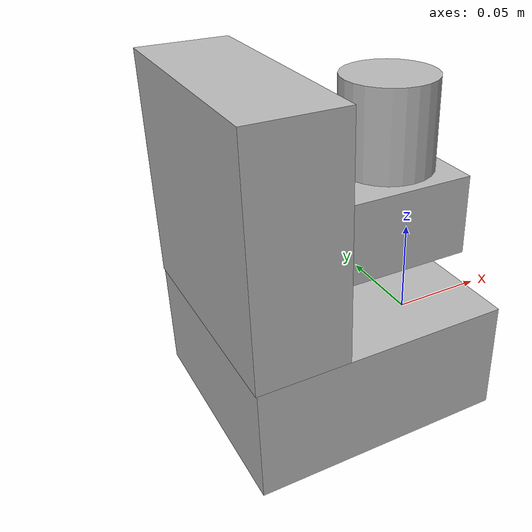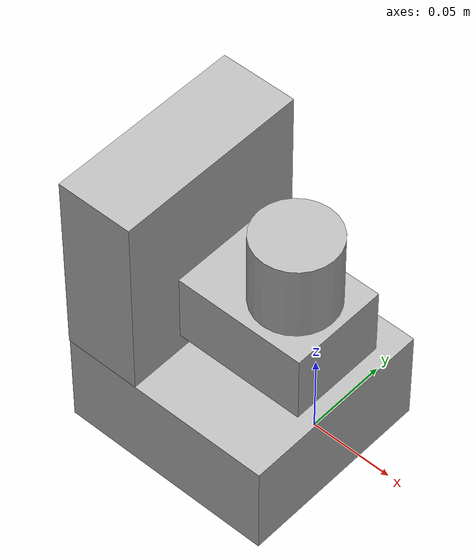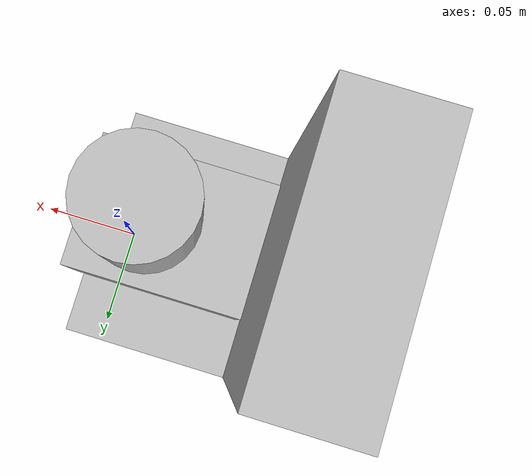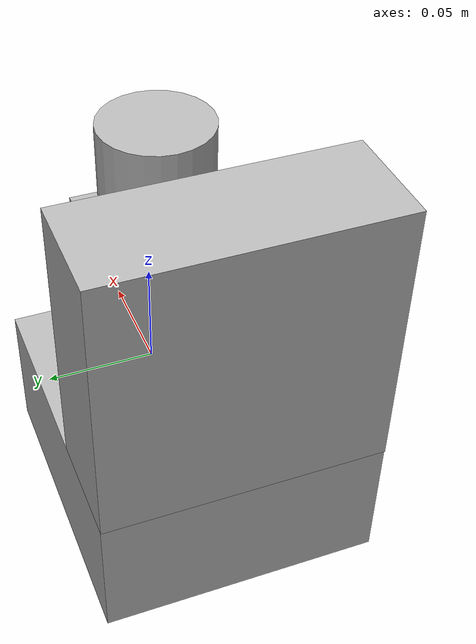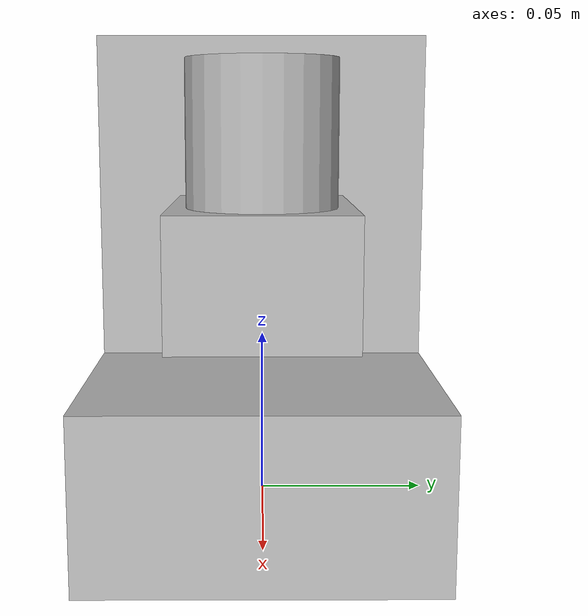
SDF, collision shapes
<?xml version='1.0'?>
<sdf version='1.4'>
  <model name='atlas'>
    <link name='head'>
      <pose>0 0 0 0 -0 0</pose>
      <inertial>
        <pose>-0.0754942 3.38765e-05 0.0277411 0 -0 0</pose>
        <mass>1.41991</mass>
        <inertia>
          <ixx>0.00361284</ixx>
          <ixy>-1.51324e-06</ixy>
          <ixz>-0.000892818</ixz>
          <iyy>0.00208745</iyy>
          <iyz>-6.83342e-07</iyz>
          <izz>0.00179047</izz>
        </inertia>
      </inertial>
      <collision name='head_collision'>
        <pose>-0.0503 0 -0.00195 0 -0 0</pose>
        <geometry>
          <box>
            <size>0.1311 0.12 0.0591</size>
          </box>
        </geometry>
        <surface>
          <contact>
            <ode/>
          </contact>
          <friction>
            <ode>
              <mu>0.9</mu>
              <mu2>0.9</mu2>
            </ode>
          </friction>
        </surface>
      </collision>
      <collision name='head_collision_head_other'>
        <pose>-0.093 0 0.0868 0 -0 0</pose>
        <geometry>
          <box>
            <size>0.0468 0.12 0.1184</size>
          </box>
        </geometry>
        <surface>
          <contact>
            <ode/>
          </contact>
          <friction>
            <ode>
              <mu>0.9</mu>
              <mu2>0.9</mu2>
            </ode>
          </friction>
        </surface>
      </collision>
      <visual name='head_visual'>
        <pose>0 0 0 0 -0 0</pose>
        <geometry>
          <mesh>
            <scale>1 1 1</scale>
            <uri>model://multisense_sl/meshes/head.dae</uri>
          </mesh>
        </geometry>
      </visual>
      <visual name='head_visual_head_imu_link'>
        <pose>-0.0475 0.035 0 0 -0 0</pose>
        <geometry>
          <box>
            <size>0.01 0.01 0.01</size>
          </box>
        </geometry>
      </visual>
      <velocity_decay>
        <linear>0</linear>
        <angular>0</angular>
      </velocity_decay>
      <velocity_decay>
        <linear>0</linear>
        <angular>0</angular>
      </velocity_decay>
      <sensor name='head_imu_sensor' type='imu'>
        <always_on>1</always_on>
        <update_rate>1000</update_rate>
        <imu>
          <noise>
            <type>gaussian</type>
            <rate>
              <mean>0</mean>
              <stddev>0.0002</stddev>
              <bias_mean>7.5e-06</bias_mean>
              <bias_stddev>8e-07</bias_stddev>
            </rate>
            <accel>
              <mean>0</mean>
              <stddev>0.017</stddev>
              <bias_mean>0.1</bias_mean>
              <bias_stddev>0.001</bias_stddev>
            </accel>
          </noise>
        </imu>
        <pose>-0.0475 0.035 0 0 -0 0</pose>
      </sensor>
      <gravity>1</gravity>
      <velocity_decay>
        <linear>0</linear>
        <angular>0</angular>
      </velocity_decay>
      <self_collide>0</self_collide>
      <sensor name='stereo_camera' type='multicamera'>
        <update_rate>30</update_rate>
        <camera name='left'>
          <horizontal_fov>1.39626</horizontal_fov>
          <image>
            <width>800</width>
            <height>800</height>
            <format>R8G8B8</format>
          </image>
          <clip>
            <near>0.02</near>
            <far>300</far>
          </clip>
          <noise>
            <type>gaussian</type>
            <mean>0</mean>
            <stddev>0.007</stddev>
          </noise>
        </camera>
        <camera name='right'>
          <pose>0 -0.07 0 0 -0 0</pose>
          <horizontal_fov>1.39626</horizontal_fov>
          <image>
            <width>800</width>
            <height>800</height>
            <format>R8G8B8</format>
          </image>
          <clip>
            <near>0.02</near>
            <far>300</far>
          </clip>
          <noise>
            <type>gaussian</type>
            <mean>0</mean>
            <stddev>0.007</stddev>
          </noise>
        </camera>
        <pose>0 0.035 -0.002 0 -0 0</pose>
      </sensor>
    </link>
    <link name='hokuyo_link'>
      <pose>-0.0446 0 0.088 0 -0 0</pose>
      <inertial>
        <pose>0.0124384 0.0004084 -0.0041783 0 -0 0</pose>
        <mass>0.057664</mass>
        <inertia>
          <ixx>0.000401606</ixx>
          <ixy>4.9927e-08</ixy>
          <ixz>1.0997e-05</ixz>
          <iyy>0.00208115</iyy>
          <iyz>-9.8165e-09</iyz>
          <izz>0.00178402</izz>
        </inertia>
      </inertial>
      <collision name='hokuyo_link_collision'>
        <pose>0.01885 0 -0.02119 0 -0 0</pose>
        <geometry>
          <box>
            <size>0.08 0.06 0.04238</size>
          </box>
        </geometry>
        <surface>
          <contact>
            <ode/>
          </contact>
          <friction>
            <ode>
              <mu>0.9</mu>
              <mu2>0.9</mu2>
            </ode>
          </friction>
        </surface>
      </collision>
      <collision name='hokuyo_link_collision_hokuyo_link_other'>
        <pose>0.03 0 0.0235 0 -0 0</pose>
        <geometry>
          <cylinder>
            <length>0.047</length>
            <radius>0.024425</radius>
          </cylinder>
        </geometry>
        <surface>
          <contact>
            <ode/>
          </contact>
          <friction>
            <ode>
              <mu>0.9</mu>
              <mu2>0.9</mu2>
            </ode>
          </friction>
        </surface>
      </collision>
      <visual name='hokuyo_link_visual'>
        <pose>0.045 -0.0261018 -0.0834237 -0.314 0 0</pose>
        <geometry>
          <mesh>
            <scale>1 1 1</scale>
            <uri>model://multisense_sl/meshes/head_camera.dae</uri>
          </mesh>
        </geometry>
      </visual>
      <velocity_decay>
        <linear>0</linear>
        <angular>0</angular>
      </velocity_decay>
      <gravity>1</gravity>
      <velocity_decay>
        <linear>0</linear>
        <angular>0</angular>
      </velocity_decay>
      <self_collide>0</self_collide>
      <sensor name='head_hokuyo_sensor' type='gpu_ray'>
        <visualize>0</visualize>
        <update_rate>40</update_rate>
        <ray>
          <scan>
            <horizontal>
              <samples>720</samples>
              <resolution>1</resolution>
              <min_angle>-1.5708</min_angle>
              <max_angle>1.5708</max_angle>
            </horizontal>
          </scan>
          <range>
            <min>0.1</min>
            <max>30</max>
            <resolution>0.01</resolution>
          </range>
          <noise>
            <type>gaussian</type>
            <mean>0</mean>
            <stddev>0.01</stddev>
          </noise>
        </ray>
        <pose>0.03 0 0.015 0 -0 0</pose>
      </sensor>
    </link>
    <joint name='hokuyo_joint' type='revolute'>
      <child>hokuyo_link</child>
      <parent>head</parent>
      <axis>
        <xyz>1 0 0</xyz>
        <limit>
          <lower>-1e+16</lower>
          <upper>1e+16</upper>
        </limit>
        <dynamics>
          <damping>0.01</damping>
        </dynamics>
      </axis>
    </joint>
    <static>0</static>

  </model>
</sdf>
